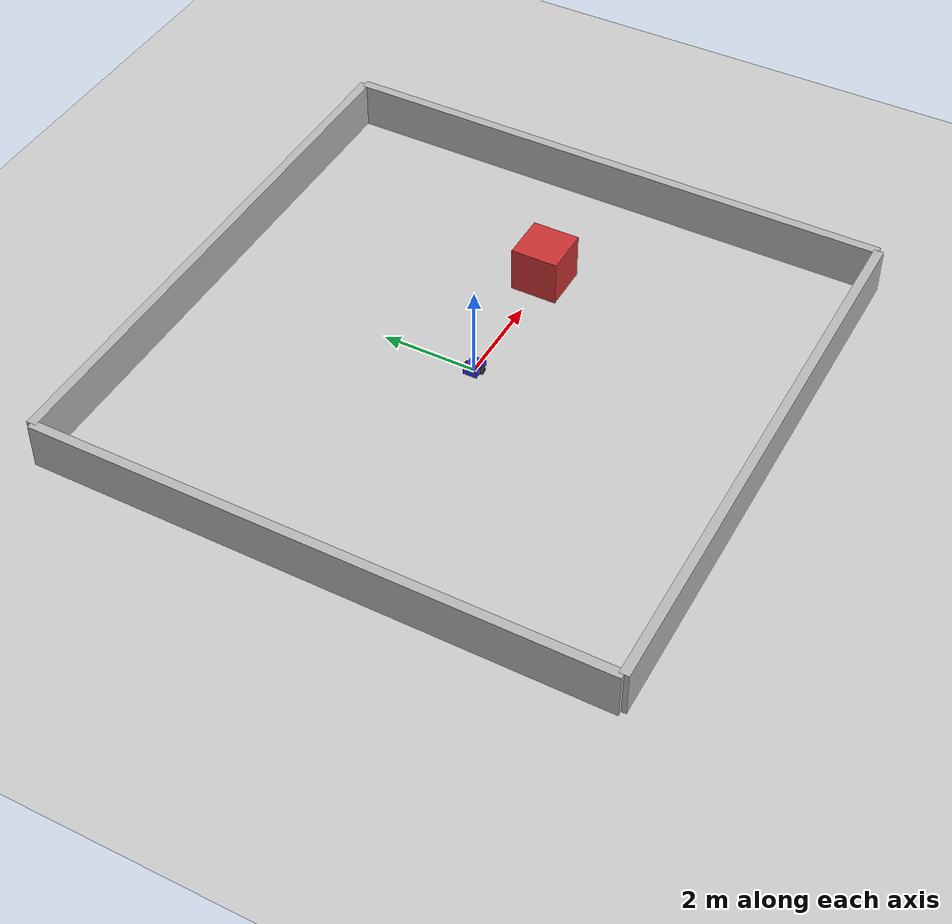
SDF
<?xml version="1.0" ?>
<sdf version="1.10">
  <world name="diffbot_world">
    <physics name="1ms" type="ignored">
      <max_step_size>0.001</max_step_size>
      <real_time_factor>1.0</real_time_factor>
    </physics>

    <plugin filename="gz-sim-physics-system" name="gz::sim::systems::Physics"/>
    <plugin filename="gz-sim-sensors-system" name="gz::sim::systems::Sensors">
      <render_engine>ogre2</render_engine>
    </plugin>
    <plugin filename="gz-sim-scene-broadcaster-system" name="gz::sim::systems::SceneBroadcaster"/>
    <plugin filename="gz-sim-user-commands-system" name="gz::sim::systems::UserCommands"/>

    <light type="directional" name="sun">
      <cast_shadows>true</cast_shadows>
      <pose>0 0 10 0 0 0</pose>
      <diffuse>0.8 0.8 0.8 1</diffuse>
      <specular>0.2 0.2 0.2 1</specular>
      <direction>-0.5 0.1 -0.9</direction>
    </light>

    <model name="ground_plane">
      <static>true</static>
      <link name="link">
        <collision name="collision">
          <geometry>
            <plane>
              <normal>0 0 1</normal>
              <size>100 100</size>
            </plane>
          </geometry>
        </collision>
        <visual name="visual">
          <geometry>
            <plane>
              <normal>0 0 1</normal>
              <size>100 100</size>
            </plane>
          </geometry>
          <material>
            <ambient>0.8 0.8 0.8 1</ambient>
            <diffuse>0.8 0.8 0.8 1</diffuse>
          </material>
        </visual>
      </link>
    </model>

    <!-- A box obstacle so the lidar sees finite ranges in all directions -->
    <model name="obstacle_box">
      <static>true</static>
      <pose>3 0 0.5 0 0 0</pose>
      <link name="link">
        <collision name="collision">
          <geometry>
            <box>
              <size>1 1 1</size>
            </box>
          </geometry>
        </collision>
        <visual name="visual">
          <geometry>
            <box>
              <size>1 1 1</size>
            </box>
          </geometry>
          <material>
            <ambient>0.8 0.2 0.2 1</ambient>
            <diffuse>0.8 0.2 0.2 1</diffuse>
          </material>
        </visual>
      </link>
    </model>

    <!-- Enclosing walls so the lidar gets a finite range reading in every direction -->
    <model name="wall_north">
      <static>true</static>
      <pose>0 6 0.5 0 0 0</pose>
      <link name="link">
        <collision name="collision">
          <geometry><box><size>12 0.2 1</size></box></geometry>
        </collision>
        <visual name="visual">
          <geometry><box><size>12 0.2 1</size></box></geometry>
        </visual>
      </link>
    </model>
    <model name="wall_south">
      <static>true</static>
      <pose>0 -6 0.5 0 0 0</pose>
      <link name="link">
        <collision name="collision">
          <geometry><box><size>12 0.2 1</size></box></geometry>
        </collision>
        <visual name="visual">
          <geometry><box><size>12 0.2 1</size></box></geometry>
        </visual>
      </link>
    </model>
    <model name="wall_east">
      <static>true</static>
      <pose>6 0 0.5 0 0 1.5708</pose>
      <link name="link">
        <collision name="collision">
          <geometry><box><size>12 0.2 1</size></box></geometry>
        </collision>
        <visual name="visual">
          <geometry><box><size>12 0.2 1</size></box></geometry>
        </visual>
      </link>
    </model>
    <model name="wall_west">
      <static>true</static>
      <pose>-6 0 0.5 0 0 1.5708</pose>
      <link name="link">
        <collision name="collision">
          <geometry><box><size>12 0.2 1</size></box></geometry>
        </collision>
        <visual name="visual">
          <geometry><box><size>12 0.2 1</size></box></geometry>
        </visual>
      </link>
    </model>

    <model name="diffbot">
      <pose>0 0 0.1 0 0 0</pose>

      <link name="chassis">
        <pose>0 0 0 0 0 0</pose>
        <inertial>
          <mass>5.0</mass>
          <inertia>
            <ixx>0.0625</ixx>
            <iyy>0.125</iyy>
            <izz>0.125</izz>
            <ixy>0</ixy>
            <ixz>0</ixz>
            <iyz>0</iyz>
          </inertia>
        </inertial>
        <collision name="chassis_collision">
          <geometry>
            <box>
              <size>0.4 0.3 0.15</size>
            </box>
          </geometry>
        </collision>
        <visual name="chassis_visual">
          <geometry>
            <box>
              <size>0.4 0.3 0.15</size>
            </box>
          </geometry>
          <material>
            <ambient>0.2 0.2 0.8 1</ambient>
            <diffuse>0.2 0.2 0.8 1</diffuse>
          </material>
        </visual>

        <sensor name="gpu_lidar" type="gpu_lidar">
          <pose>0.15 0 0.1 0 0 0</pose>
          <topic>scan</topic>
          <update_rate>10</update_rate>
          <always_on>true</always_on>
          <visualize>true</visualize>
          <lidar>
            <scan>
              <horizontal>
                <samples>360</samples>
                <resolution>1</resolution>
                <min_angle>-3.14159265</min_angle>
                <max_angle>3.14159265</max_angle>
              </horizontal>
              <vertical>
                <samples>1</samples>
                <resolution>1</resolution>
                <min_angle>0</min_angle>
                <max_angle>0</max_angle>
              </vertical>
            </scan>
            <range>
              <min>0.08</min>
              <max>30.0</max>
              <resolution>0.01</resolution>
            </range>
          </lidar>
        </sensor>
      </link>

      <link name="left_wheel">
        <pose>0 0.175 -0.02 -1.5707963 0 0</pose>
        <inertial>
          <mass>0.5</mass>
          <inertia>
            <ixx>0.001</ixx>
            <iyy>0.001</iyy>
            <izz>0.001</izz>
            <ixy>0</ixy>
            <ixz>0</ixz>
            <iyz>0</iyz>
          </inertia>
        </inertial>
        <collision name="left_wheel_collision">
          <geometry>
            <cylinder>
              <radius>0.08</radius>
              <length>0.05</length>
            </cylinder>
          </geometry>
          <surface>
            <friction>
              <ode>
                <mu>1.0</mu>
                <mu2>1.0</mu2>
              </ode>
            </friction>
          </surface>
        </collision>
        <visual name="left_wheel_visual">
          <geometry>
            <cylinder>
              <radius>0.08</radius>
              <length>0.05</length>
            </cylinder>
          </geometry>
          <material>
            <ambient>0.1 0.1 0.1 1</ambient>
            <diffuse>0.1 0.1 0.1 1</diffuse>
          </material>
        </visual>
      </link>

      <link name="right_wheel">
        <pose>0 -0.175 -0.02 -1.5707963 0 0</pose>
        <inertial>
          <mass>0.5</mass>
          <inertia>
            <ixx>0.001</ixx>
            <iyy>0.001</iyy>
            <izz>0.001</izz>
            <ixy>0</ixy>
            <ixz>0</ixz>
            <iyz>0</iyz>
          </inertia>
        </inertial>
        <collision name="right_wheel_collision">
          <geometry>
            <cylinder>
              <radius>0.08</radius>
              <length>0.05</length>
            </cylinder>
          </geometry>
          <surface>
            <friction>
              <ode>
                <mu>1.0</mu>
                <mu2>1.0</mu2>
              </ode>
            </friction>
          </surface>
        </collision>
        <visual name="right_wheel_visual">
          <geometry>
            <cylinder>
              <radius>0.08</radius>
              <length>0.05</length>
            </cylinder>
          </geometry>
          <material>
            <ambient>0.1 0.1 0.1 1</ambient>
            <diffuse>0.1 0.1 0.1 1</diffuse>
          </material>
        </visual>
      </link>

      <link name="caster_wheel">
        <pose>-0.15 0 -0.05 0 0 0</pose>
        <inertial>
          <mass>0.2</mass>
          <inertia>
            <ixx>0.0001</ixx>
            <iyy>0.0001</iyy>
            <izz>0.0001</izz>
            <ixy>0</ixy>
            <ixz>0</ixz>
            <iyz>0</iyz>
          </inertia>
        </inertial>
        <collision name="caster_wheel_collision">
          <geometry>
            <sphere>
              <radius>0.05</radius>
            </sphere>
          </geometry>
          <surface>
            <friction>
              <ode>
                <mu>0.0</mu>
                <mu2>0.0</mu2>
              </ode>
            </friction>
          </surface>
        </collision>
        <visual name="caster_wheel_visual">
          <geometry>
            <sphere>
              <radius>0.05</radius>
            </sphere>
          </geometry>
        </visual>
      </link>

      <joint name="left_wheel_joint" type="revolute">
        <parent>chassis</parent>
        <child>left_wheel</child>
        <axis>
          <xyz>0 0 1</xyz>
          <limit>
            <lower>-1e16</lower>
            <upper>1e16</upper>
          </limit>
        </axis>
      </joint>

      <joint name="right_wheel_joint" type="revolute">
        <parent>chassis</parent>
        <child>right_wheel</child>
        <axis>
          <xyz>0 0 1</xyz>
          <limit>
            <lower>-1e16</lower>
            <upper>1e16</upper>
          </limit>
        </axis>
      </joint>

      <joint name="caster_wheel_joint" type="ball">
        <parent>chassis</parent>
        <child>caster_wheel</child>
      </joint>

      <plugin filename="gz-sim-diff-drive-system" name="gz::sim::systems::DiffDrive">
        <left_joint>left_wheel_joint</left_joint>
        <right_joint>right_wheel_joint</right_joint>
        <wheel_separation>0.35</wheel_separation>
        <wheel_radius>0.08</wheel_radius>
        <odom_publish_frequency>20</odom_publish_frequency>
        <topic>cmd_vel</topic>
        <tf_topic>tf</tf_topic>
        <frame_id>odom</frame_id>
        <child_frame_id>chassis</child_frame_id>
      </plugin>

      <plugin filename="gz-sim-joint-state-publisher-system" name="gz::sim::systems::JointStatePublisher"/>
    </model>
  </world>
</sdf>
